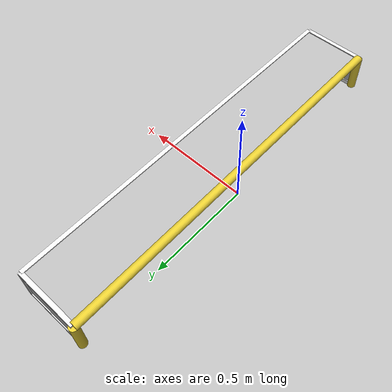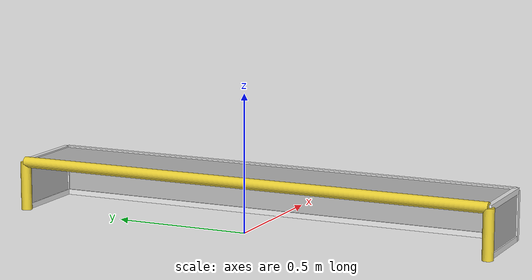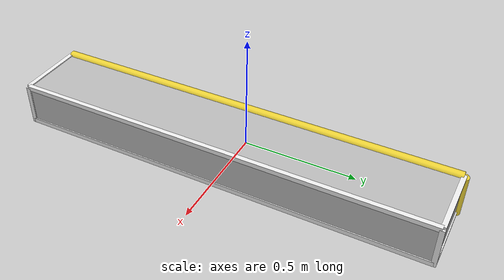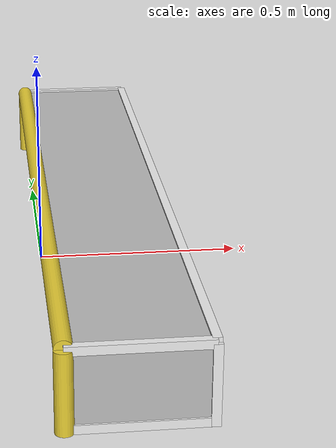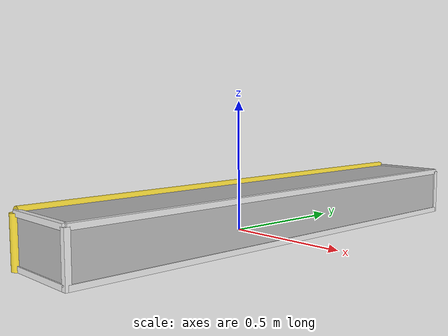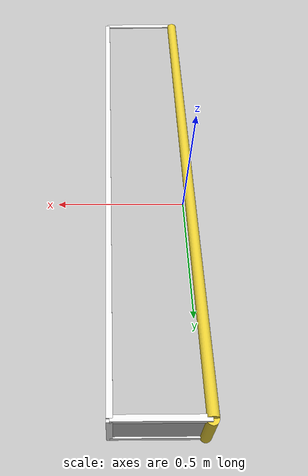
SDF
<?xml version="1.0" ?>
<sdf version="1.5">
  <model name="SSL Fields">
    <static>true</static>
    <link name="left_post">
      <pose>0 0.9 0.09 0 0 0</pose>
      <collision name="collision">
        <geometry>
          <cylinder>
            <radius>0.02</radius>
            <length>0.18</length>
          </cylinder>
        </geometry>
      </collision>
      <visual name="visual">
        <geometry>
          <cylinder>
            <radius>0.02</radius>
            <length>0.18</length>
          </cylinder>
        </geometry>
        <material>
          <script>
            <uri>file://media/materials/scripts/gazebo.material</uri>
            <name>Gazebo/ZincYellow</name>
          </script>
        </material>
      </visual>
    </link>
    <link name="left_support_horiz_lower">
      <pose>0.15 0.9 0.01 0 0 0</pose>
      <collision name="collision">
        <geometry>
          <box>
            <size>0.3 0.02 0.02</size>
          </box>
        </geometry>
      </collision>
      <visual name="visual">
        <geometry>
          <box>
            <size>0.3 0.02 0.02</size>
          </box>
        </geometry>
        <material>
          <script>
            <uri>file://media/materials/scripts/gazebo.material</uri>
            <name>Gazebo/White</name>
          </script>
        </material>
      </visual>
    </link>
    <link name="left_support_horiz_upper">
      <pose>0.15 0.9 0.18 0 0 0</pose>
      <collision name="collision">
        <geometry>
          <box>
            <size>0.3 0.02 0.02</size>
          </box>
        </geometry>
      </collision>
      <visual name="visual">
        <geometry>
          <box>
            <size>0.3 0.02 0.02</size>
          </box>
        </geometry>
        <material>
          <script>
            <uri>file://media/materials/scripts/gazebo.material</uri>
            <name>Gazebo/White</name>
          </script>
        </material>
      </visual>
    </link>
    <link name="left_support_vertical">
      <pose>0.3 0.9 0.09 0 1.578 0</pose>
      <collision name="collision">
        <geometry>
          <box>
            <size>0.18 0.02 0.02</size>
          </box>
        </geometry>
      </collision>
      <visual name="visual">
        <geometry>
          <box>
            <size>0.18 0.02 0.02</size>
          </box>
        </geometry>
        <material>
          <script>
            <uri>file://media/materials/scripts/gazebo.material</uri>
            <name>Gazebo/White</name>
          </script>
        </material>
      </visual>
    </link>
    <link name="right_support_horiz_lower">
      <pose>0.15 -0.9 0.01 0 0 0</pose>
      <collision name="collision">
        <geometry>
          <box>
            <size>0.3 0.02 0.02</size>
          </box>
        </geometry>
      </collision>
      <visual name="visual">
        <geometry>
          <box>
            <size>0.3 0.02 0.02</size>
          </box>
        </geometry>
        <material>
          <script>
            <uri>file://media/materials/scripts/gazebo.material</uri>
            <name>Gazebo/White</name>
          </script>
        </material>
      </visual>
    </link>
    <link name="right_support_horiz_upper">
      <pose>0.15 -0.9 0.18 0 0 0</pose>
      <collision name="collision">
        <geometry>
          <box>
            <size>0.3 0.02 0.02</size>
          </box>
        </geometry>
      </collision>
      <visual name="visual">
        <geometry>
          <box>
            <size>0.3 0.02 0.02</size>
          </box>
        </geometry>
        <material>
          <script>
            <uri>file://media/materials/scripts/gazebo.material</uri>
            <name>Gazebo/White</name>
          </script>
        </material>
      </visual>
    </link>
    <link name="right_support_vertical">
      <pose>0.3 -0.9 0.09 0 1.578 0</pose>
      <collision name="collision">
        <geometry>
          <box>
            <size>0.18 0.02 0.02</size>
          </box>
        </geometry>
      </collision>
      <visual name="visual">
        <geometry>
          <box>
            <size>0.18 0.02 0.02</size>
          </box>
        </geometry>
        <material>
          <script>
            <uri>file://media/materials/scripts/gazebo.material</uri>
            <name>Gazebo/White</name>
          </script>
        </material>
      </visual>
    </link>
    <link name="center_support_horiz_lower">
      <pose>0.3 0 0.01 0 1.578 0</pose>
      <collision name="collision">
        <geometry>
          <box>
            <size>0.02 1.8 0.02</size>
          </box>
        </geometry>
      </collision>
      <visual name="visual">
        <geometry>
          <box>
            <size>0.02 1.8 0.02</size>
          </box>
        </geometry>
        <material>
          <script>
            <uri>file://media/materials/scripts/gazebo.material</uri>
            <name>Gazebo/White</name>
          </script>
        </material>
      </visual>
    </link>
    <link name="center_support_horiz_upper">
      <pose>0.3 0 0.18 0 1.578 0</pose>
      <collision name="collision">
        <geometry>
          <box>
            <size>0.02 1.8 0.02</size>
          </box>
        </geometry>
      </collision>
      <visual name="visual">
        <geometry>
          <box>
            <size>0.02 1.8 0.02</size>
          </box>
        </geometry>
        <material>
          <script>
            <uri>file://media/materials/scripts/gazebo.material</uri>
            <name>Gazebo/White</name>
          </script>
        </material>
      </visual>
    </link>
    <link name="right_post">
      <pose>0 -0.9 0.09 0 0 0</pose>
      <collision name="collision">
        <geometry>
          <cylinder>
            <radius>0.02</radius>
            <length>0.18</length>
          </cylinder>
        </geometry>
      </collision>
      <visual name="visual">
        <geometry>
          <cylinder>
            <radius>0.02</radius>
            <length>0.18</length>
          </cylinder>
        </geometry>
        <material>
          <script>
            <uri>file://media/materials/scripts/gazebo.material</uri>
            <name>Gazebo/ZincYellow</name>
          </script>
        </material>
      </visual>
    </link>
    <link name="crossbar">
      <pose>0 0 0.18 1.57 1.57 0</pose>
      <collision name="collision">
        <geometry>
          <cylinder>
            <radius>0.02</radius>
            <length>1.8</length>
          </cylinder>
        </geometry>
      </collision>
      <visual name="visual">
        <geometry>
          <cylinder>
            <radius>0.02</radius>
            <length>1.8</length>
          </cylinder>
        </geometry>
        <material>
          <script>
            <uri>file://media/materials/scripts/gazebo.material</uri>
            <name>Gazebo/ZincYellow</name>
          </script>
        </material>
      </visual>
    </link>
    <link name="upper_net">
      <pose>0.15 0 0.18 0 0 0</pose>
      <collision name="collision">
        <geometry>
          <box>
            <size>0.3 1.8 0.01</size>
          </box>
        </geometry>
      </collision>
      <visual name="visual">
        <geometry>
          <box>
            <size>0.3 1.8 0.01</size>
          </box>
        </geometry>
        <material>
          <script>
            <uri>model://robocup09_spl_field/materials/scripts/</uri>
            <uri>model://robocup09_spl_field/materials/textures/</uri>
            <name>RoboCup/Net</name>
          </script>
        </material>
      </visual>
    </link>
    <link name="center_net">
      <pose>0.3 0 0.09 0 0 0</pose>
      <collision name="collision">
        <geometry>
          <box>
            <size>0.01 1.8 0.18</size>
          </box>
        </geometry>
      </collision>
      <visual name="visual">
        <geometry>
          <box>
            <size>0.01 1.8 0.18</size>
          </box>
        </geometry>
        <material>
          <script>
            <uri>model://robocup09_spl_field/materials/scripts/</uri>
            <uri>model://robocup09_spl_field/materials/textures/</uri>
            <name>RoboCup/Net</name>
          </script>
        </material>
      </visual>
    </link>
    <link name="left_net">
      <pose>0.15 0.9 0.09 0 0 0</pose>
      <collision name="collision">
        <geometry>
          <box>
            <size>0.3 0.01 0.18</size>
          </box>
        </geometry>
      </collision>
      <visual name="visual">
        <geometry>
          <box>
            <size>0.3 0.01 0.18</size>
          </box>
        </geometry>
        <material>
          <script>
            <uri>model://robocup09_spl_field/materials/scripts/</uri>
            <uri>model://robocup09_spl_field/materials/textures/</uri>
            <name>RoboCup/Net</name>
          </script>
        </material>
      </visual>
    </link>
    <link name="right_net">
      <pose>0.15 -0.9 0.09 0 0 0</pose>
      <collision name="collision">
        <geometry>
          <box>
            <size>0.3 0.01 0.18</size>
          </box>
        </geometry>
      </collision>
      <visual name="visual">
        <geometry>
          <box>
            <size>0.3 0.01 0.18</size>
          </box>
        </geometry>
        <material>
          <script>
            <uri>model://robocup09_spl_field/materials/scripts/</uri>
            <uri>model://robocup09_spl_field/materials/textures/</uri>
            <name>RoboCup/Net</name>
          </script>
        </material>
      </visual>
    </link>
  </model>
</sdf>
